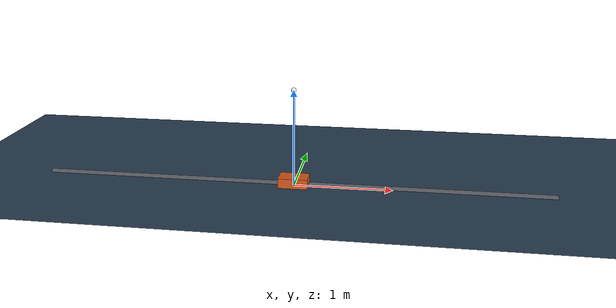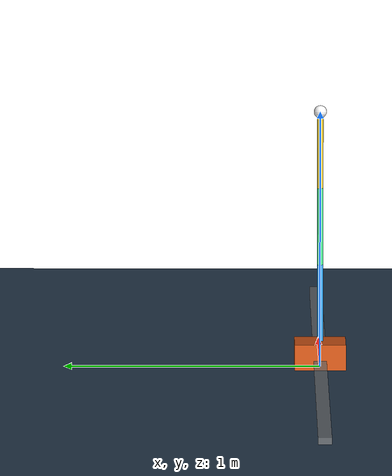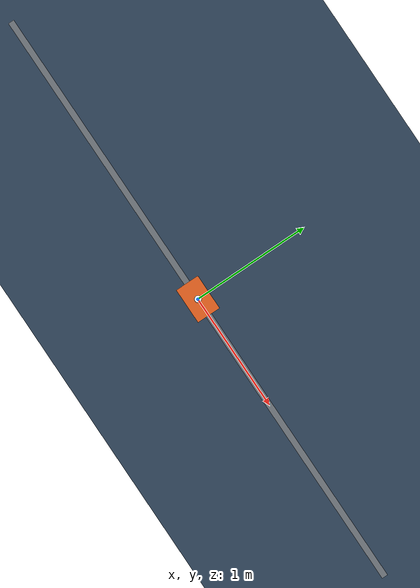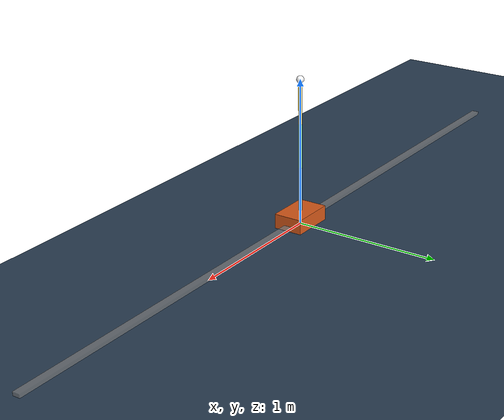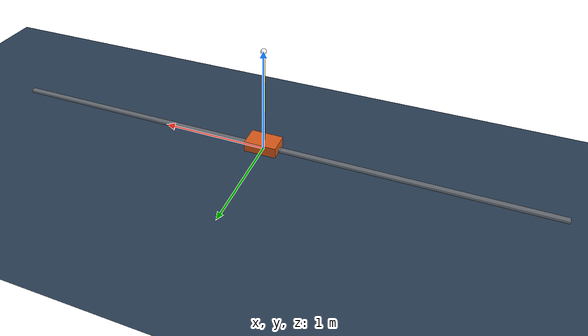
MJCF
<?xml version="1.0" encoding="utf-8"?>
<mujoco model="triple_pendulum">

  <compiler angle="radian" autolimits="true"/>
  <option timestep="0.01" gravity="0 0 -9.81" integrator="RK4"/>

  <!-- visuals -->
  <visual>
    <headlight diffuse="0.6 0.6 0.6" ambient="0.3 0.3 0.3" specular="0.1 0.1 0.1"/>
    <rgba haze="0.15 0.25 0.35 1"/>
    <global azimuth="130" elevation="-20" offwidth="1280" offheight="720"/>
  </visual>

  <!-- assets -->
  <asset>
    <texture name="skybox" type="skybox" builtin="gradient"
             rgb1="0.4 0.6 0.8" rgb2="0.05 0.05 0.15"
             width="512" height="3072"/>
    <texture name="grid" type="2d" builtin="checker" mark="edge"
             rgb1="0.20 0.30 0.40" rgb2="0.12 0.18 0.25"
             markrgb="0.8 0.8 0.8" width="300" height="300"/>
    <material name="groundplane" texture="grid" texuniform="true" reflectance="0.15"/>
    <material name="track"  rgba="0.55 0.55 0.55 0.7"/>
    <material name="cart"   rgba="0.85 0.35 0.10 1"/>
    <material name="pole1"  rgba="0.20 0.65 0.95 1"/>
    <material name="pole2"  rgba="0.25 0.90 0.55 1"/>
    <material name="pole3"  rgba="0.95 0.82 0.18 1"/>
    <material name="tip"    rgba="1.00 1.00 1.00 1"/>
  </asset>

  <!-- worldbody -->
  <worldbody>

    <!-- Lighting -->
    <light name="main"   pos="0 -1 4" dir="0 0.3 -1" diffuse="0.8 0.8 0.8" specular="0.2 0.2 0.2"/>
    <light name="fill"   pos="0  3 2" dir="0 -0.5 -1" diffuse="0.3 0.3 0.3"/>

    <!-- Floor -->
    <geom name="floor" type="plane" size="0 0 0.05" material="groundplane" contype="0" conaffinity="0"/>

    <!-- Rail / track (visual only, no collisions) -->
    <geom name="track" type="box" pos="0 0 0.025" size="2.6 0.025 0.012"
          material="track" contype="0" conaffinity="0"/>

    <!-- cart -->
    <body name="cart" pos="0 0 0.05">
      <joint name="slider" type="slide" axis="1 0 0"
             range="-2.6 2.6" damping="0.0" frictionloss="0.0"/>
      <geom name="cart_geom" type="box" size="0.15 0.10 0.05"
            mass="1.0" material="cart" contype="0" conaffinity="0"/>

      <!-- pole 1 -->
      <body name="pole1" pos="0 0 0.05">
        <joint name="hinge1" type="hinge" axis="0 1 0" damping="0.005" range="-6.2832 6.2832"/>
        <geom name="pole1_geom" type="capsule" fromto="0 0 0 0 0 0.30"
              size="0.012" mass="0.1" material="pole1" contype="0" conaffinity="0"/>

          <!-- pole 2 -->
        <body name="pole2" pos="0 0 0.30">
          <joint name="hinge2" type="hinge" axis="0 1 0" damping="0.005" range="-6.2832 6.2832"/>
          <geom name="pole2_geom" type="capsule" fromto="0 0 0 0 0 0.30"
                size="0.012" mass="0.1" material="pole2" contype="0" conaffinity="0"/>

            <!-- pole 3 -->
          <body name="pole3" pos="0 0 0.30">
            <joint name="hinge3" type="hinge" axis="0 1 0" damping="0.005" range="-6.2832 6.2832"/>
            <geom name="pole3_geom" type="capsule" fromto="0 0 0 0 0 0.30"
                  size="0.012" mass="0.1" material="pole3" contype="0" conaffinity="0"/>
            <!-- tip marker -->
            <geom name="tip" type="sphere" pos="0 0 0.30" size="0.025"
                  material="tip" contype="0" conaffinity="0"/>
          </body>

        </body>
      </body>

    </body>

  </worldbody>

  <!-- actuator: action [-1,1] scaled to +-20 N in env -->
  <actuator>
    <motor name="slide" joint="slider" gear="1" ctrllimited="true" ctrlrange="-20 20"/>
  </actuator>

  <!-- cameras -->
  <worldbody>
    <camera name="side_track" pos="0 -4.0 1.2" euler="1.4835 0 0" mode="track" target="cart"/>
    <camera name="fixed_wide" pos="0 -5.5 1.5" euler="1.4835 0 0"/>
  </worldbody>

</mujoco>
